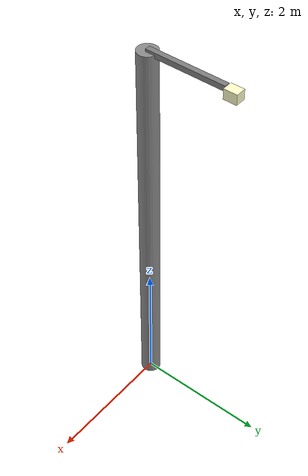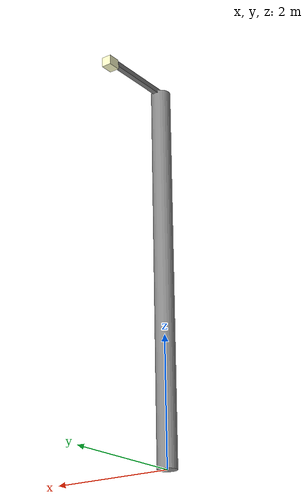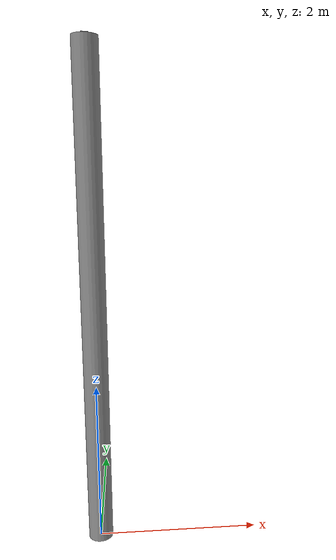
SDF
<?xml version="1.0"?>
<sdf version="1.9">
  <model name="street_lamp">
    <static>true</static>
    <link name="main">
      <collision name="col">
        <geometry><cylinder><radius>0.2</radius><length>6</length></cylinder></geometry>
      </collision>
      <!-- Pole -->
      <visual name="pole">
        <pose>0 0 3 0 0 0</pose>
        <geometry><cylinder><radius>0.15</radius><length>6</length></cylinder></geometry>
        <material>
          <ambient>0.5 0.5 0.5 1</ambient>
          <diffuse>0.55 0.55 0.55 1</diffuse>
          <specular>0.4 0.4 0.4 1</specular>
        </material>
      </visual>
      <!-- Arm -->
      <visual name="arm">
        <pose>0 0.6 6 0 0 0</pose>
        <geometry><box><size>0.08 1.2 0.08</size></box></geometry>
        <material>
          <ambient>0.45 0.45 0.45 1</ambient>
          <diffuse>0.5 0.5 0.5 1</diffuse>
          <specular>0.3 0.3 0.3 1</specular>
        </material>
      </visual>
      <!-- Light fixture -->
      <visual name="light_fixture">
        <pose>0 1.3 5.95 0 0 0</pose>
        <geometry><box><size>0.15 0.2 0.15</size></box></geometry>
        <material>
          <ambient>0.9 0.9 0.6 1</ambient>
          <diffuse>1 1 0.8 1</diffuse>
          <emissive>0.5 0.5 0.2 1</emissive>
        </material>
      </visual>
    </link>
  </model>
</sdf>
